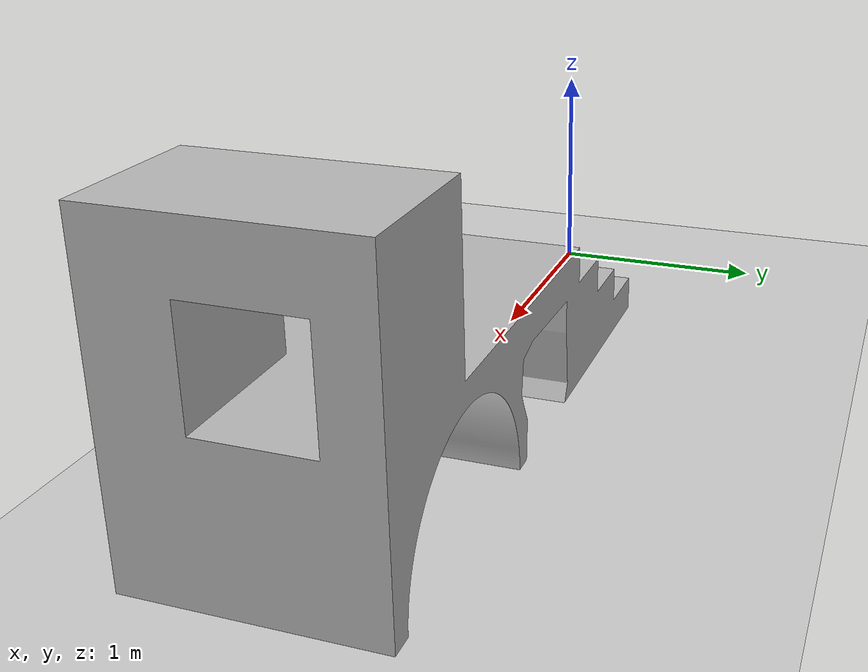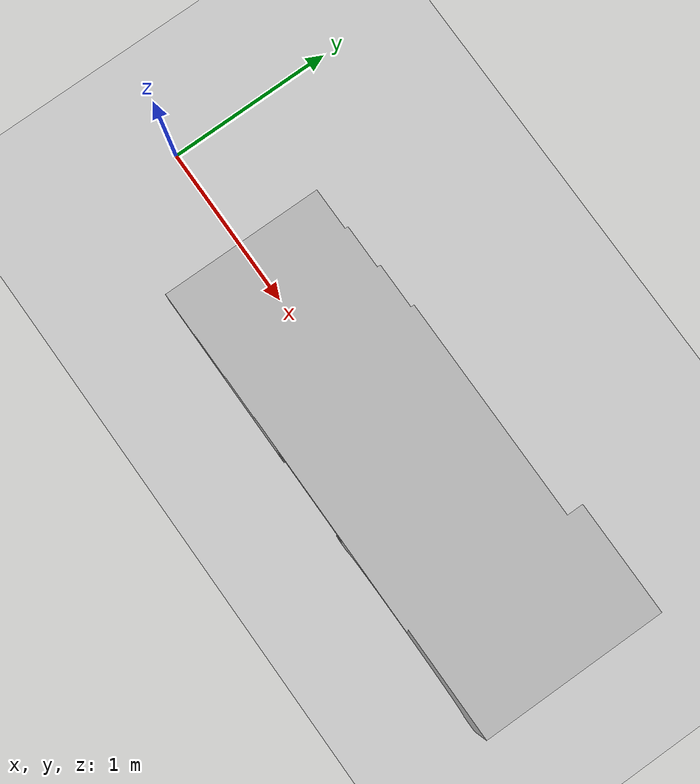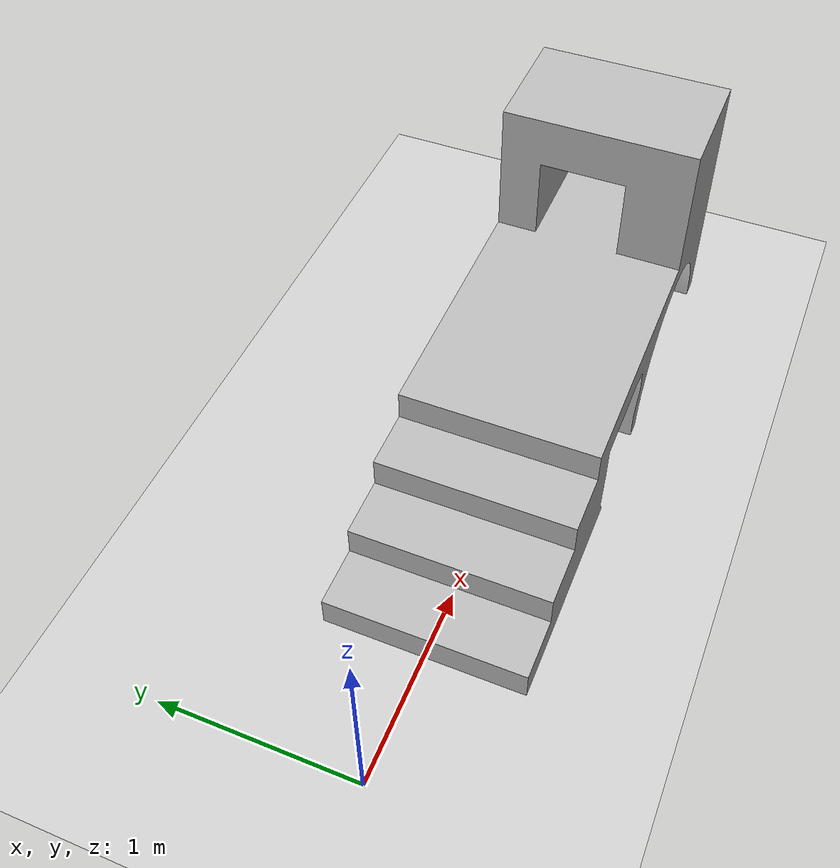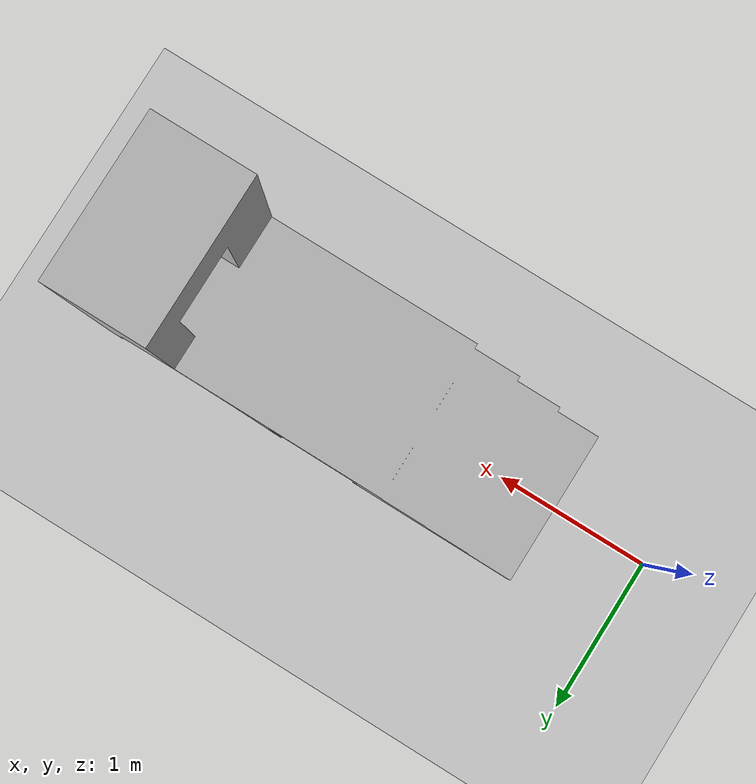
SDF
<sdf version="1.7">
 <world name="my_world">
  <physics name="1ms" type="ignored">
   <max_step_size>0.001</max_step_size>
   <real_time_factor>1.0</real_time_factor>
  </physics>
  <plugin filename="gz-sim-physics-system" name="gz::sim::systems::Physics"/>
  <plugin filename="gz-sim-user-commands-system" name="gz::sim::systems::UserCommands"/>
  <plugin filename="gz-sim-scene-broadcaster-system" name="gz::sim::systems::SceneBroadcaster"/>
  <plugin filename="gz-sim-sensors-system" name="gz::sim::systems::Sensors">
   <render_engine>ogre2</render_engine>
  </plugin>
  <plugin filename="gz-sim-imu-system" name="gz::sim::systems::Imu"/>
  <plugin filename="gz-sim-navsat-system" name="gz::sim::systems::NavSat"/>
  <spherical_coordinates>
   <surface_model>EARTH_WGS84</surface_model>
   <world_frame_orientation>ENU</world_frame_orientation>
   <latitude_deg>13.555961464002298</latitude_deg>
   <longitude_deg>100.57844824377624</longitude_deg>
   <elevation>0.0</elevation>
   <heading_deg>0.0</heading_deg>
  </spherical_coordinates>
  <light name="sun" type="directional">
   <pose>0 0 10 0 -0 0</pose>
   <diffuse>0.8 0.8 0.8 1</diffuse>
   <specular>0.2 0.2 0.2 1</specular>
   <attenuation>
    <range>1000</range>
    <constant>0.9</constant>
    <linear>0.01</linear>
    <quadratic>0.001</quadratic>
   </attenuation>
   <direction>-0.5 0.1 -0.9</direction>
   <spot><inner_angle>0</inner_angle><outer_angle>0</outer_angle><falloff>0</falloff></spot>
  </light>
  <model name="ground_plane">
   <static>1</static>
   <link name="link">
    <collision name="collision">
     <geometry><plane><normal>0 0 1</normal><size>100 100</size></plane></geometry>
     <surface><friction><ode><mu>100</mu><mu2>50</mu2></ode></friction></surface>
    </collision>
    <visual name="visual">
     <cast_shadows>0</cast_shadows>
     <geometry><plane><normal>0 0 1</normal><size>100 100</size></plane></geometry>
     <material>
      <script><uri>file://media/materials/scripts/gazebo.material</uri><name>Gazebo/Grey</name></script>
     </material>
    </visual>
   </link>
  </model>
  <include><uri>model://stair</uri><pose>3.5 -0.5 0 0 0 3.14</pose></include>
  <gravity>0 0 -9.8</gravity>
  <magnetic_field>6e-06 2.3e-05 -4.2e-05</magnetic_field>
  <atmosphere type="adiabatic"/>
  <physics type="ode">
   <max_step_size>0.001</max_step_size>
   <real_time_factor>1</real_time_factor>
   <real_time_update_rate>1000</real_time_update_rate>
  </physics>
  <scene><ambient>0.4 0.4 0.4 1</ambient><background>0.7 0.7 0.7 1</background><shadows>1</shadows></scene>
 </world>
</sdf>

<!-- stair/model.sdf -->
<sdf version="1.6">
  <model name="stair">
    <static>true</static>
    <link name="stair_link">
      <collision name="stair_collision">
        <geometry>
          <mesh>
            <uri>model://stair/stair.dae</uri>
          </mesh>
        </geometry>
      </collision>
      <visual name="stair_visual">
        <geometry>
          <mesh>
            <uri>model://stair/stair.dae</uri>
          </mesh>
        </geometry>
      </visual>
    </link>
  </model>
</sdf>
